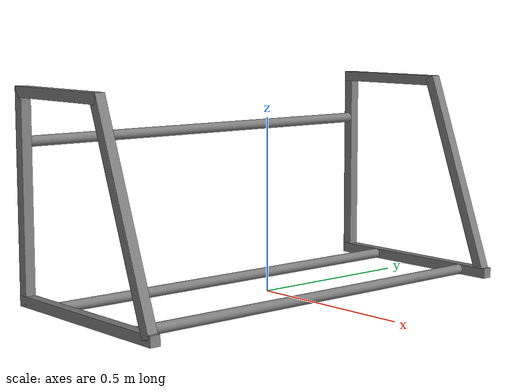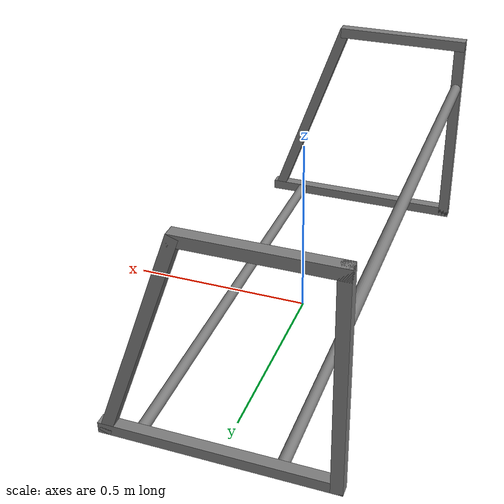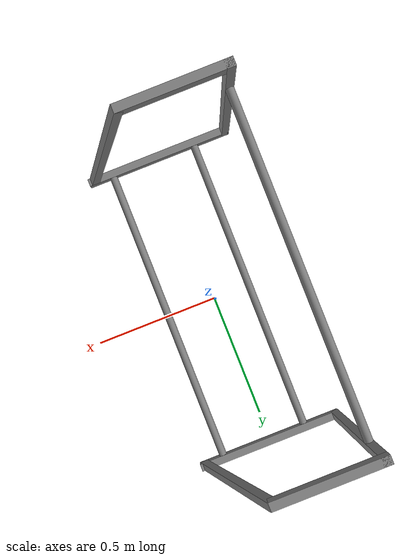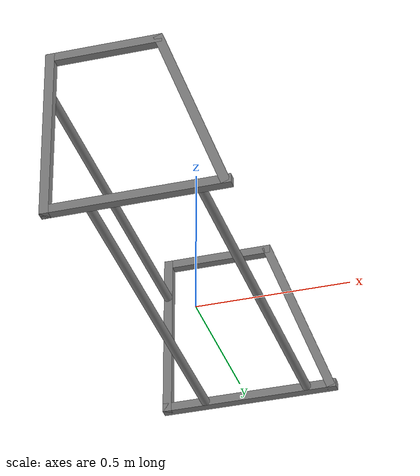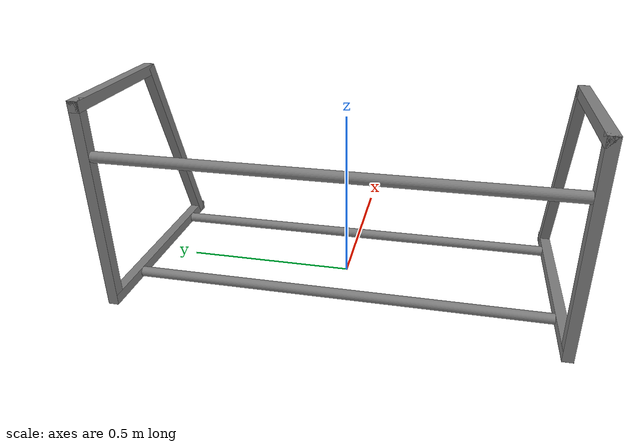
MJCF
<!-- Copyright (c) 2025 Boston Dynamics AI Institute LLC. All rights reserved. -->
<mujoco model="tire_rack_fixed">
  <include file="tire_rack_defs.xml" />
  <worldbody>
    <body name="tire_rack_fixed" pos="0 0 0.3">
      <!-- Calculated as a hollow box with wall thickness of 0.01 m. -->
      <inertial pos="0 0 0" mass="12" diaginertia="2.8043 1.267 2.8043"/>

      <!-- Left geom -->
      <geom name="left_horizontal_link_1" type="box" size="0.3 0.015 0.015" pos="0 -0.6175 -0.285" priority="3" material="tire_rack_metal"/>
      <geom name="left_horizontal_link_2" type="box" size="0.19 0.015 0.015" pos="-0.11 -0.6175 0.285" priority="3" material="tire_rack_metal"/>
      <geom name="left_vertical_link_1" type="box" size="0.015 0.015 0.3" pos="-0.285 -0.6175 0" priority="3" material="tire_rack_metal"/>
      <geom name="left_vertical_link_2" type="box" size="0.015 0.015 0.314" pos="0.175 -0.6175 0" quat="0.9846394 0 -0.1746005 0" priority="3" material="tire_rack_metal"/>

      <!-- Right geom -->
      <geom name="right_horizontal_link_1" type="box" size="0.3 0.015 0.015" pos="0 0.6175 -0.285" priority="3" material="tire_rack_metal"/>
      <geom name="right_horizontal_link_2" type="box" size="0.19 0.015 0.015" pos="-0.11 0.6175 0.285" priority="3" material="tire_rack_metal"/>
      <geom name="right_vertical_link_1" type="box" size="0.015 0.015 0.3" pos="-0.285 0.6175 0" priority="3" material="tire_rack_metal"/>
      <geom name="right_vertical_link_2" type="box" size="0.015 0.015 0.314" pos="0.175 0.6175 0" quat="0.9846394 0 -0.1746005 0" priority="3" material="tire_rack_metal"/>

      <!-- Support cylinders geom -->
      <geom name="cylinder_1" type="cylinder" size="0.015 0.6025" pos="-0.15 0 -0.285" quat="0.7073883 0.7068252 0 0" priority="3" material="tire_rack_metal"/>
      <geom name="cylinder_2" type="cylinder" size="0.015 0.6025" pos="0.2 0 -0.285" quat="0.7073883 0.7068252 0 0" priority="3" material="tire_rack_metal"/>
      <geom name="cylinder_3" type="cylinder" size="0.015 0.6025" pos="-0.285 0 0.15" quat="0.7073883 0.7068252 0 0" priority="3" material="tire_rack_metal"/>
    </body>
  </worldbody>
</mujoco>

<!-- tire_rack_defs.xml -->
<mujoco>
  <!-- Copyright (c) 2025 Boston Dynamics AI Institute LLC. All rights reserved. -->
  <default>
    <default class="visual">
      <geom type="mesh" contype="0" conaffinity="0" group="2"/>
    </default>
    <default class="collision">
      <geom friction="0.42 0.42" priority="6"/>
    </default>
  </default>

  <asset>
    <material name="tire_rack_metal" rgba="0.5 0.5 0.5 1" metallic="0.5" roughness="0.5"/>
  </asset>
</mujoco>
